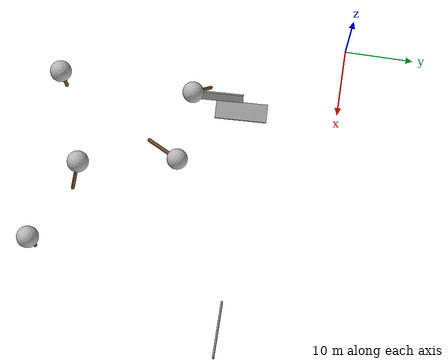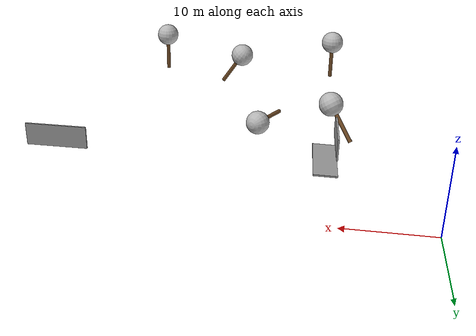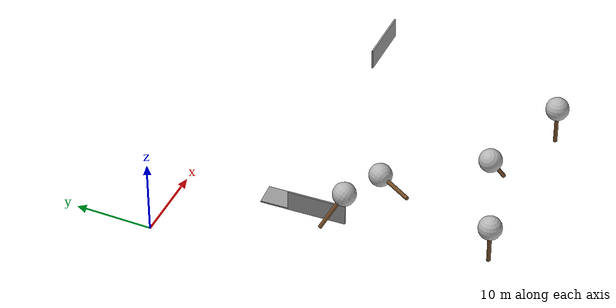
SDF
<sdf version="1.7">
 <world name="default">
  <model name="grey_wall">
   <static>1</static>
   <link name="link">
    <pose>0 0 1.4 0 -0 0</pose>
    <collision name="collision"><geometry><box><size>7.5 0.2 2.8</size></box></geometry></collision>
    <visual name="visual">
     <cast_shadows>0</cast_shadows>
     <geometry><box><size>7.5 0.2 2.8</size></box></geometry>
     <material>
      <script>
       <uri>model://grey_wall/materials/scripts</uri>
       <uri>model://grey_wall/materials/textures</uri>
       <name>vrc/grey_wall</name>
      </script>
     </material>
    </visual>
   </link>
   <pose>43.5312 -12.2002 0 0 -0 0</pose>
  </model>
  <model name="tree_simple">
   <static>1</static>
   <link name="link">
    <pose>0 0 0.1 0 -0 0</pose>
    <inertial>
     <mass>666</mass>
     <inertia>
      <ixx>0.0861167</ixx>
      <ixy>0</ixy>
      <ixz>0</ixz>
      <iyy>0.0861167</iyy>
      <iyz>0</iyz>
      <izz>0.0861167</izz>
     </inertia>
    </inertial>
    <collision name="collision_trunk">
     <pose>0 0 2 0 -0 0</pose>
     <geometry><cylinder><radius>0.25</radius><length>4</length></cylinder></geometry>
     <surface>
      <contact>
       <poissons_ratio>0.347</poissons_ratio>
       <elastic_modulus>8.8e+09</elastic_modulus>
       <ode><kp>100000</kp><kd>100</kd><max_vel>100</max_vel><min_depth>0.001</min_depth></ode>
      </contact>
      <friction>
       <torsional>
        <coefficient>1</coefficient>
        <use_patch_radius>0</use_patch_radius>
        <surface_radius>0.01</surface_radius>
       </torsional>
      </friction>
     </surface>
    </collision>
    <collision name="collision_treetop">
     <pose>0 0 5.2 0 -0 0</pose>
     <geometry><sphere><radius>1.5</radius></sphere></geometry>
     <surface>
      <contact>
       <poissons_ratio>0.347</poissons_ratio>
       <elastic_modulus>8.8e+09</elastic_modulus>
       <ode><kp>100000</kp><kd>100</kd><max_vel>100</max_vel><min_depth>0.001</min_depth></ode>
      </contact>
      <friction>
       <torsional>
        <coefficient>1</coefficient>
        <use_patch_radius>0</use_patch_radius>
        <surface_radius>0.01</surface_radius>
       </torsional>
      </friction>
     </surface>
    </collision>
    <visual name="trunk">
     <pose>0 0 2 0 -0 0</pose>
     <geometry><cylinder><radius>0.25</radius><length>4</length></cylinder></geometry>
     <material>
      <script>
       <uri>model://tree_simple/scripts</uri>
       <uri>model://tree_simple/materials/textures</uri>
       <name>TreeSimple/Trunk</name>
      </script>
     </material>
    </visual>
    <visual name="treetop">
     <pose>0 0 5.2 0 -0 0</pose>
     <geometry><sphere><radius>1.5</radius></sphere></geometry>
     <material>
      <script>
       <uri>model://tree_simple/scripts</uri>
       <uri>model://tree_simple/materials/textures</uri>
       <name>TreeSimple/Treetop</name>
      </script>
     </material>
    </visual>
   </link>
   <pose>17.828 -26.4454 0 -1.50121 -0 -0.476822</pose>
  </model>
  <model name="tree_simple_0">
   <static>1</static>
   <link name="link">
    <pose>0 0 0.1 0 -0 0</pose>
    <inertial>
     <mass>666</mass>
     <inertia>
      <ixx>0.0861167</ixx>
      <ixy>0</ixy>
      <ixz>0</ixz>
      <iyy>0.0861167</iyy>
      <iyz>0</iyz>
      <izz>0.0861167</izz>
     </inertia>
    </inertial>
    <collision name="collision_trunk">
     <pose>0 0 2 0 -0 0</pose>
     <geometry><cylinder><radius>0.25</radius><length>4</length></cylinder></geometry>
     <surface>
      <contact>
       <poissons_ratio>0.347</poissons_ratio>
       <elastic_modulus>8.8e+09</elastic_modulus>
       <ode><kp>100000</kp><kd>100</kd><max_vel>100</max_vel><min_depth>0.001</min_depth></ode>
      </contact>
      <friction>
       <torsional>
        <coefficient>1</coefficient>
        <use_patch_radius>0</use_patch_radius>
        <surface_radius>0.01</surface_radius>
       </torsional>
      </friction>
     </surface>
    </collision>
    <collision name="collision_treetop">
     <pose>0 0 5.2 0 -0 0</pose>
     <geometry><sphere><radius>1.5</radius></sphere></geometry>
     <surface>
      <contact>
       <poissons_ratio>0.347</poissons_ratio>
       <elastic_modulus>8.8e+09</elastic_modulus>
       <ode><kp>100000</kp><kd>100</kd><max_vel>100</max_vel><min_depth>0.001</min_depth></ode>
      </contact>
      <friction>
       <torsional>
        <coefficient>1</coefficient>
        <use_patch_radius>0</use_patch_radius>
        <surface_radius>0.01</surface_radius>
       </torsional>
      </friction>
     </surface>
    </collision>
    <visual name="trunk">
     <pose>0 0 2 0 -0 0</pose>
     <geometry><cylinder><radius>0.25</radius><length>4</length></cylinder></geometry>
     <material>
      <script>
       <uri>model://tree_simple/scripts</uri>
       <uri>model://tree_simple/materials/textures</uri>
       <name>TreeSimple/Trunk</name>
      </script>
     </material>
    </visual>
    <visual name="treetop">
     <pose>0 0 5.2 0 -0 0</pose>
     <geometry><sphere><radius>1.5</radius></sphere></geometry>
     <material>
      <script>
       <uri>model://tree_simple/scripts</uri>
       <uri>model://tree_simple/materials/textures</uri>
       <name>TreeSimple/Treetop</name>
      </script>
     </material>
    </visual>
   </link>
   <pose>26.7517 -35.6756 0 -0.574839 0.12779 1.46054</pose>
  </model>
  <model name="tree_simple_5">
   <static>1</static>
   <link name="link">
    <pose>0 0 0.1 0 -0 0</pose>
    <inertial>
     <mass>666</mass>
     <inertia>
      <ixx>0.0861167</ixx>
      <ixy>0</ixy>
      <ixz>0</ixz>
      <iyy>0.0861167</iyy>
      <iyz>0</iyz>
      <izz>0.0861167</izz>
     </inertia>
    </inertial>
    <collision name="collision_trunk">
     <pose>0 0 2 0 -0 0</pose>
     <geometry><cylinder><radius>0.25</radius><length>4</length></cylinder></geometry>
     <surface>
      <contact>
       <poissons_ratio>0.347</poissons_ratio>
       <elastic_modulus>8.8e+09</elastic_modulus>
       <ode><kp>100000</kp><kd>100</kd><max_vel>100</max_vel><min_depth>0.001</min_depth></ode>
      </contact>
      <friction>
       <torsional>
        <coefficient>1</coefficient>
        <use_patch_radius>0</use_patch_radius>
        <surface_radius>0.01</surface_radius>
       </torsional>
      </friction>
     </surface>
    </collision>
    <collision name="collision_treetop">
     <pose>0 0 5.2 0 -0 0</pose>
     <geometry><sphere><radius>1.5</radius></sphere></geometry>
     <surface>
      <contact>
       <poissons_ratio>0.347</poissons_ratio>
       <elastic_modulus>8.8e+09</elastic_modulus>
       <ode><kp>100000</kp><kd>100</kd><max_vel>100</max_vel><min_depth>0.001</min_depth></ode>
      </contact>
      <friction>
       <torsional>
        <coefficient>1</coefficient>
        <use_patch_radius>0</use_patch_radius>
        <surface_radius>0.01</surface_radius>
       </torsional>
      </friction>
     </surface>
    </collision>
    <visual name="trunk">
     <pose>0 0 2 0 -0 0</pose>
     <geometry><cylinder><radius>0.25</radius><length>4</length></cylinder></geometry>
     <material>
      <script>
       <uri>model://tree_simple/scripts</uri>
       <uri>model://tree_simple/materials/textures</uri>
       <name>TreeSimple/Trunk</name>
      </script>
     </material>
    </visual>
    <visual name="treetop">
     <pose>0 0 5.2 0 -0 0</pose>
     <geometry><sphere><radius>1.5</radius></sphere></geometry>
     <material>
      <script>
       <uri>model://tree_simple/scripts</uri>
       <uri>model://tree_simple/materials/textures</uri>
       <name>TreeSimple/Treetop</name>
      </script>
     </material>
    </visual>
   </link>
   <pose>11.4672 -39.5995 0 0 -0 0</pose>
  </model>
  <model name="tree_simple_clone">
   <static>1</static>
   <link name="link">
    <pose>0 0 0.1 0 -0 0</pose>
    <inertial>
     <mass>666</mass>
     <inertia>
      <ixx>0.0861167</ixx>
      <ixy>0</ixy>
      <ixz>0</ixz>
      <iyy>0.0861167</iyy>
      <iyz>0</iyz>
      <izz>0.0861167</izz>
     </inertia>
    </inertial>
    <collision name="collision_trunk">
     <pose>0 0 2 0 -0 0</pose>
     <geometry><cylinder><radius>0.25</radius><length>4</length></cylinder></geometry>
     <surface>
      <contact>
       <poissons_ratio>0.347</poissons_ratio>
       <elastic_modulus>8.8e+09</elastic_modulus>
       <ode><kp>100000</kp><kd>100</kd><max_vel>100</max_vel><min_depth>0.001</min_depth></ode>
      </contact>
      <friction>
       <torsional>
        <coefficient>1</coefficient>
        <use_patch_radius>0</use_patch_radius>
        <surface_radius>0.01</surface_radius>
       </torsional>
      </friction>
     </surface>
    </collision>
    <collision name="collision_treetop">
     <pose>0 0 5.2 0 -0 0</pose>
     <geometry><sphere><radius>1.5</radius></sphere></geometry>
     <surface>
      <contact>
       <poissons_ratio>0.347</poissons_ratio>
       <elastic_modulus>8.8e+09</elastic_modulus>
       <ode><kp>100000</kp><kd>100</kd><max_vel>100</max_vel><min_depth>0.001</min_depth></ode>
      </contact>
      <friction>
       <torsional>
        <coefficient>1</coefficient>
        <use_patch_radius>0</use_patch_radius>
        <surface_radius>0.01</surface_radius>
       </torsional>
      </friction>
     </surface>
    </collision>
    <visual name="trunk">
     <pose>0 0 2 0 -0 0</pose>
     <geometry><cylinder><radius>0.25</radius><length>4</length></cylinder></geometry>
     <material>
      <script>
       <uri>model://tree_simple/scripts</uri>
       <uri>model://tree_simple/materials/textures</uri>
       <name>TreeSimple/Trunk</name>
      </script>
     </material>
    </visual>
    <visual name="treetop">
     <pose>0 0 5.2 0 -0 0</pose>
     <geometry><sphere><radius>1.5</radius></sphere></geometry>
     <material>
      <script>
       <uri>model://tree_simple/scripts</uri>
       <uri>model://tree_simple/materials/textures</uri>
       <name>TreeSimple/Treetop</name>
      </script>
     </material>
    </visual>
   </link>
   <pose>35.6208 -39.1377 0 0 -0 0</pose>
  </model>
  <model name="grey_wall_clone_3">
   <static>1</static>
   <link name="link">
    <pose>0 0 1.4 0 -0 0</pose>
    <collision name="collision"><geometry><box><size>7.5 0.2 2.8</size></box></geometry></collision>
    <visual name="visual">
     <cast_shadows>0</cast_shadows>
     <geometry><box><size>7.5 0.2 2.8</size></box></geometry>
     <material>
      <script>
       <uri>model://grey_wall/materials/scripts</uri>
       <uri>model://grey_wall/materials/textures</uri>
       <name>vrc/grey_wall</name>
      </script>
     </material>
    </visual>
   </link>
   <pose>10.3289 -17.4986 0 0 0 -1.52542</pose>
  </model>
  <model name="grey_wall_clone_3_clone">
   <static>1</static>
   <link name="link">
    <pose>0 0 1.4 0 -0 0</pose>
    <collision name="collision"><geometry><box><size>7.5 0.2 2.8</size></box></geometry></collision>
    <visual name="visual">
     <cast_shadows>0</cast_shadows>
     <geometry><box><size>7.5 0.2 2.8</size></box></geometry>
     <material>
      <script>
       <uri>model://grey_wall/materials/scripts</uri>
       <uri>model://grey_wall/materials/textures</uri>
       <name>vrc/grey_wall</name>
      </script>
     </material>
    </visual>
   </link>
   <pose>10.1863 -13.86 0 -1.53358 -0 -1.52542</pose>
  </model>
  <model name="tree_simple_3_clone">
   <static>1</static>
   <link name="link">
    <pose>0 0 0.1 0 -0 0</pose>
    <inertial>
     <mass>666</mass>
     <inertia>
      <ixx>0.0861167</ixx>
      <ixy>0</ixy>
      <ixz>0</ixz>
      <iyy>0.0861167</iyy>
      <iyz>0</iyz>
      <izz>0.0861167</izz>
     </inertia>
    </inertial>
    <collision name="collision_trunk">
     <pose>0 0 2 0 -0 0</pose>
     <geometry><cylinder><radius>0.25</radius><length>4</length></cylinder></geometry>
     <surface>
      <contact>
       <poissons_ratio>0.347</poissons_ratio>
       <elastic_modulus>8.8e+09</elastic_modulus>
       <ode><kp>100000</kp><kd>100</kd><max_vel>100</max_vel><min_depth>0.001</min_depth></ode>
      </contact>
      <friction>
       <torsional>
        <coefficient>1</coefficient>
        <use_patch_radius>0</use_patch_radius>
        <surface_radius>0.01</surface_radius>
       </torsional>
      </friction>
     </surface>
    </collision>
    <collision name="collision_treetop">
     <pose>0 0 5.2 0 -0 0</pose>
     <geometry><sphere><radius>1.5</radius></sphere></geometry>
     <surface>
      <contact>
       <poissons_ratio>0.347</poissons_ratio>
       <elastic_modulus>8.8e+09</elastic_modulus>
       <ode><kp>100000</kp><kd>100</kd><max_vel>100</max_vel><min_depth>0.001</min_depth></ode>
      </contact>
      <friction>
       <torsional>
        <coefficient>1</coefficient>
        <use_patch_radius>0</use_patch_radius>
        <surface_radius>0.01</surface_radius>
       </torsional>
      </friction>
     </surface>
    </collision>
    <visual name="trunk">
     <pose>0 0 2 0 -0 0</pose>
     <geometry><cylinder><radius>0.25</radius><length>4</length></cylinder></geometry>
     <material>
      <script>
       <uri>model://tree_simple/scripts</uri>
       <uri>model://tree_simple/materials/textures</uri>
       <name>TreeSimple/Trunk</name>
      </script>
     </material>
    </visual>
    <visual name="treetop">
     <pose>0 0 5.2 0 -0 0</pose>
     <geometry><sphere><radius>1.5</radius></sphere></geometry>
     <material>
      <script>
       <uri>model://tree_simple/scripts</uri>
       <uri>model://tree_simple/materials/textures</uri>
       <name>TreeSimple/Treetop</name>
      </script>
     </material>
    </visual>
   </link>
   <pose>8.55495 -18.6817 0 -0 0.701151 -0.662531</pose>
  </model>
 </world>
</sdf>
